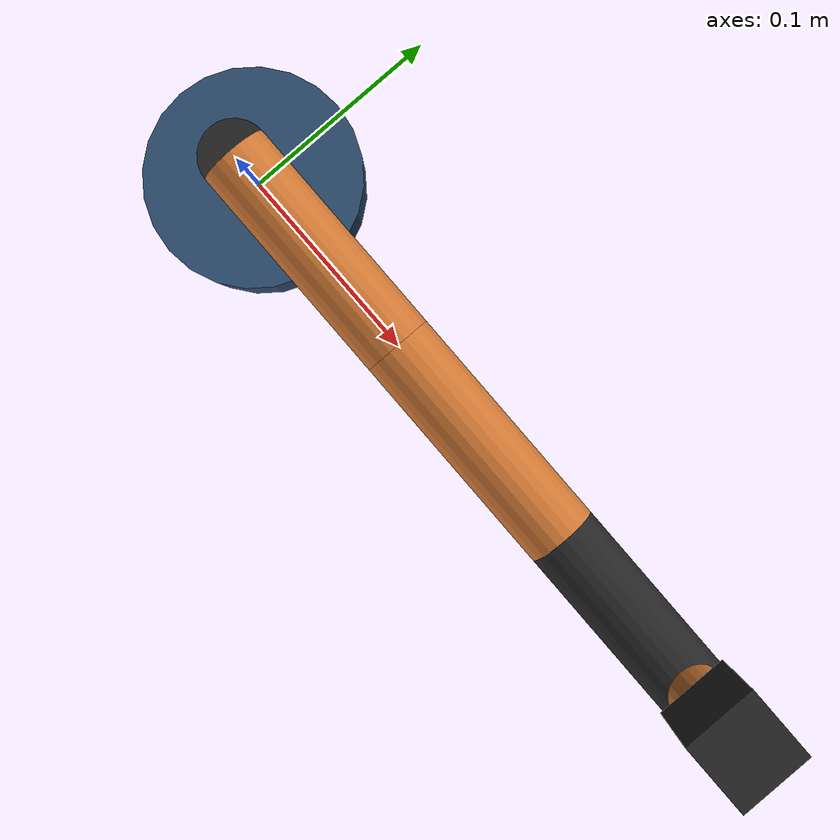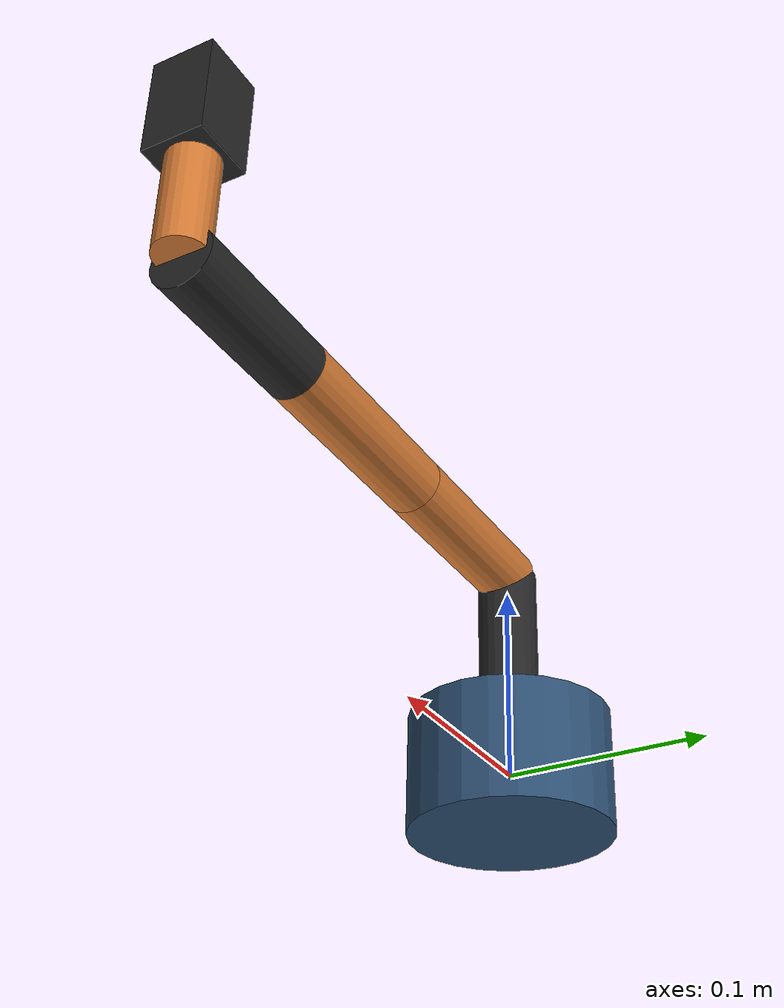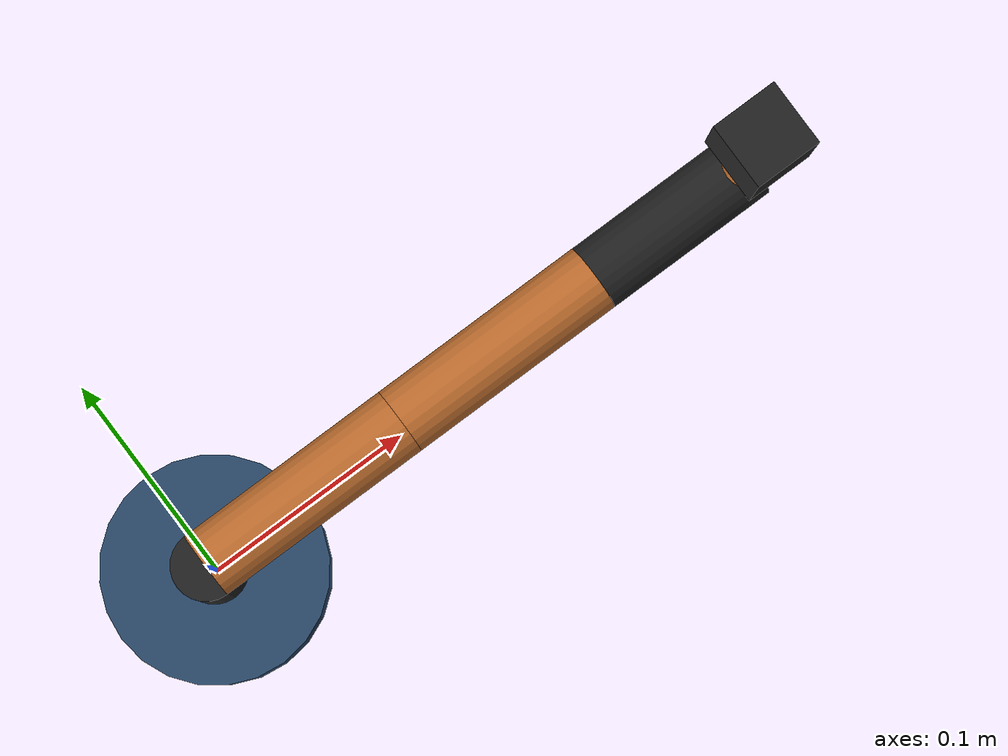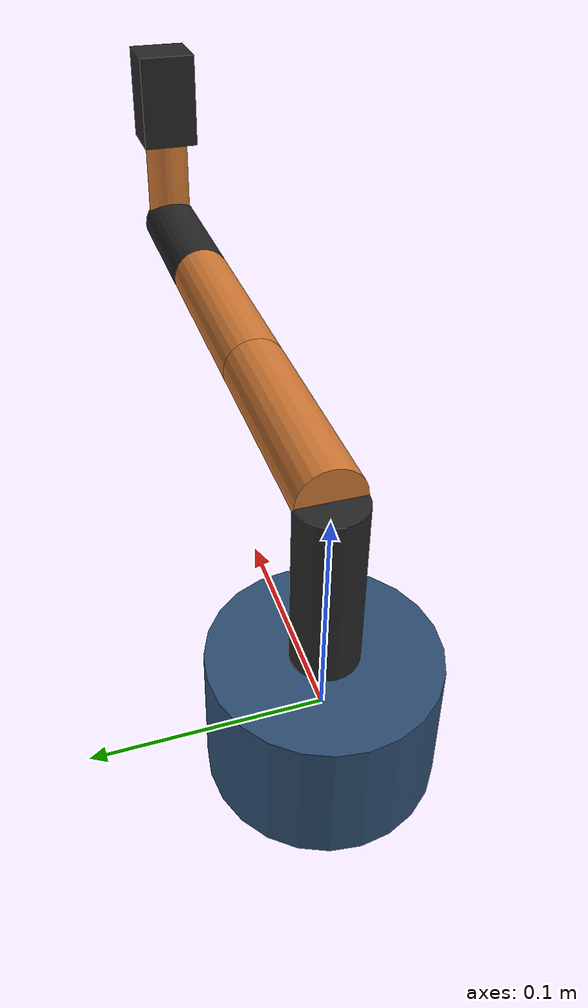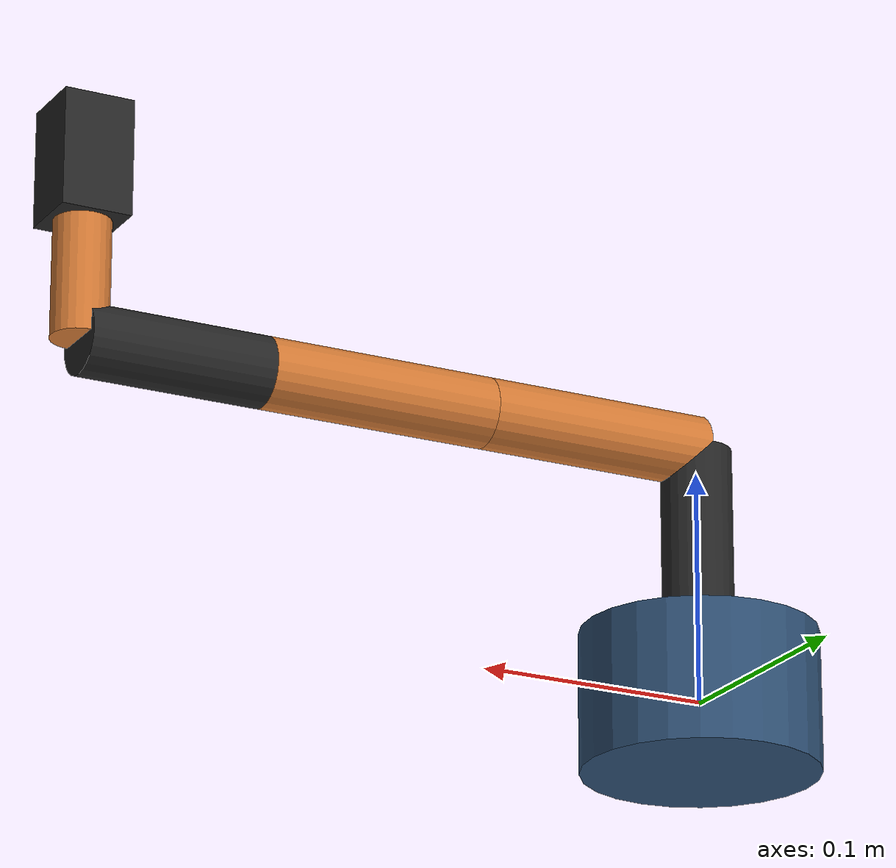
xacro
<?xml version="1.0"?>
<robot xmlns:xacro="http://www.ros.org/wiki/xacro" name="arm_platform">
  <xacro:property name="pi_const" value="3.1415926535897931"/>
  <xacro:property name="base_height" value="0.06"/>
  <xacro:property name="link_1_length" value="0.08"/>
  <xacro:property name="link_2_length" value="0.10"/>
  <xacro:property name="link_3_length" value="0.10"/>
  <xacro:property name="link_4_length" value="0.08"/>
  <xacro:property name="link_5_length" value="0.05"/>
  <xacro:property name="link_radius" value="0.015"/>

  <material name="base_blue">
    <color rgba="0.18 0.31 0.45 1.0"/>
  </material>
  <material name="arm_orange">
    <color rgba="0.83 0.48 0.21 1.0"/>
  </material>
  <material name="joint_dark">
    <color rgba="0.15 0.15 0.15 1.0"/>
  </material>

  <link name="base_link">
    <visual>
      <geometry>
        <cylinder radius="0.05" length="${base_height}"/>
      </geometry>
      <material name="base_blue"/>
    </visual>
  </link>

  <link name="link_1">
    <visual>
      <origin xyz="0 0 ${link_1_length / 2.0}" rpy="0 0 0"/>
      <geometry>
        <cylinder radius="${link_radius}" length="${link_1_length}"/>
      </geometry>
      <material name="joint_dark"/>
    </visual>
  </link>

  <joint name="joint_1" type="revolute">
    <parent link="base_link"/>
    <child link="link_1"/>
    <origin xyz="0 0 ${base_height / 2.0}" rpy="0 0 0"/>
    <axis xyz="0 0 1"/>
    <limit lower="${-pi}" upper="${pi}" effort="1.0" velocity="0.5"/>
  </joint>

  <link name="link_2">
    <visual>
        <origin xyz="${link_2_length / 2.0} 0 0" rpy="0 ${pi_const / 2.0} 0"/>
      <geometry>
        <cylinder radius="${link_radius}" length="${link_2_length}"/>
      </geometry>
      <material name="arm_orange"/>
    </visual>
  </link>

  <joint name="joint_2" type="revolute">
    <parent link="link_1"/>
    <child link="link_2"/>
    <origin xyz="0 0 ${link_1_length}" rpy="0 0 0"/>
    <axis xyz="0 1 0"/>
    <limit lower="${-pi_const}" upper="${pi_const}" effort="1.0" velocity="0.5"/>
  </joint>

  <link name="link_3">
    <visual>
        <origin xyz="${link_3_length / 2.0} 0 0" rpy="0 ${pi_const / 2.0} 0"/>
      <geometry>
        <cylinder radius="${link_radius}" length="${link_3_length}"/>
      </geometry>
      <material name="arm_orange"/>
    </visual>
  </link>

  <joint name="joint_3" type="revolute">
    <parent link="link_2"/>
    <child link="link_3"/>
    <origin xyz="${link_2_length} 0 0" rpy="0 0 0"/>
    <axis xyz="0 1 0"/>
    <limit lower="${-pi_const}" upper="${pi_const}" effort="1.0" velocity="0.5"/>
  </joint>

  <link name="link_4">
    <visual>
        <origin xyz="${link_4_length / 2.0} 0 0" rpy="0 ${pi_const / 2.0} 0"/>
      <geometry>
        <cylinder radius="${link_radius}" length="${link_4_length}"/>
      </geometry>
      <material name="joint_dark"/>
    </visual>
  </link>

  <joint name="joint_4" type="revolute">
    <parent link="link_3"/>
    <child link="link_4"/>
    <origin xyz="${link_3_length} 0 0" rpy="0 0 0"/>
    <axis xyz="0 1 0"/>
    <limit lower="${-pi_const}" upper="${pi_const}" effort="1.0" velocity="0.5"/>
  </joint>

  <link name="link_5">
    <visual>
      <origin xyz="0 0 ${link_5_length / 2.0}" rpy="0 0 0"/>
      <geometry>
        <cylinder radius="${link_radius * 0.8}" length="${link_5_length}"/>
      </geometry>
      <material name="arm_orange"/>
    </visual>
  </link>

  <joint name="joint_5" type="revolute">
    <parent link="link_4"/>
    <child link="link_5"/>
    <origin xyz="${link_4_length} 0 0" rpy="0 0 0"/>
    <axis xyz="1 0 0"/>
    <limit lower="${-pi_const}" upper="${pi_const}" effort="1.0" velocity="0.5"/>
  </joint>

  <link name="tool_link">
    <visual>
      <origin xyz="0 0 ${link_5_length / 2.0}" rpy="0 0 0"/>
      <geometry>
        <box size="0.03 0.03 ${link_5_length}"/>
      </geometry>
      <material name="joint_dark"/>
    </visual>
  </link>

  <joint name="joint_6" type="revolute">
    <parent link="link_5"/>
    <child link="tool_link"/>
    <origin xyz="0 0 ${link_5_length}" rpy="0 0 0"/>
    <axis xyz="0 0 1"/>
    <limit lower="${-pi}" upper="${pi}" effort="1.0" velocity="0.5"/>
  </joint>
</robot>
